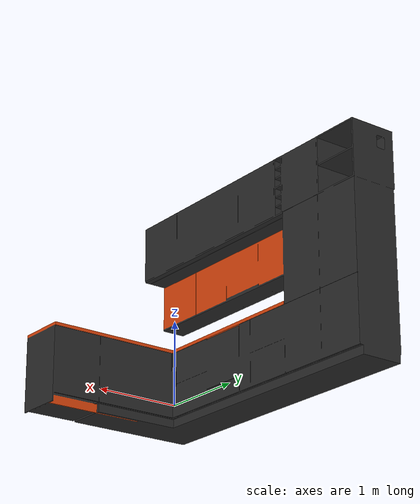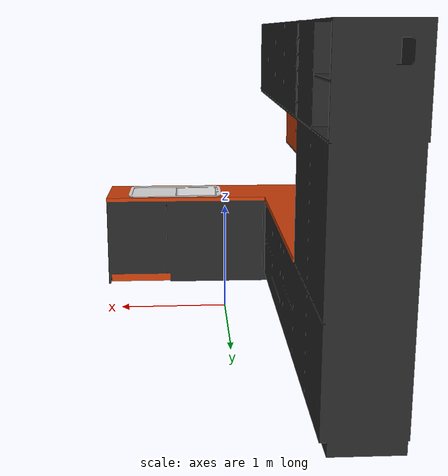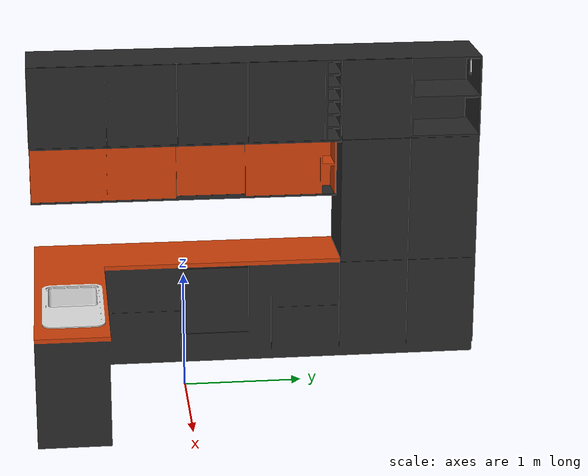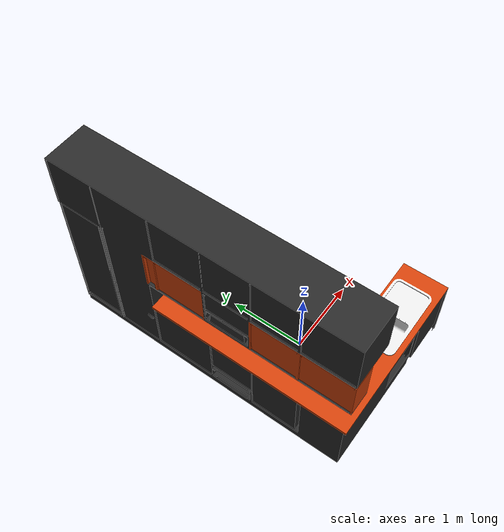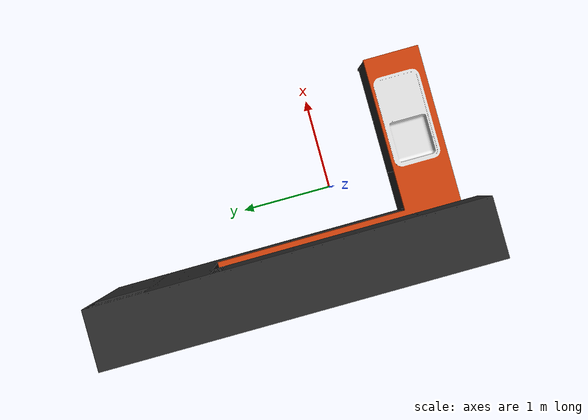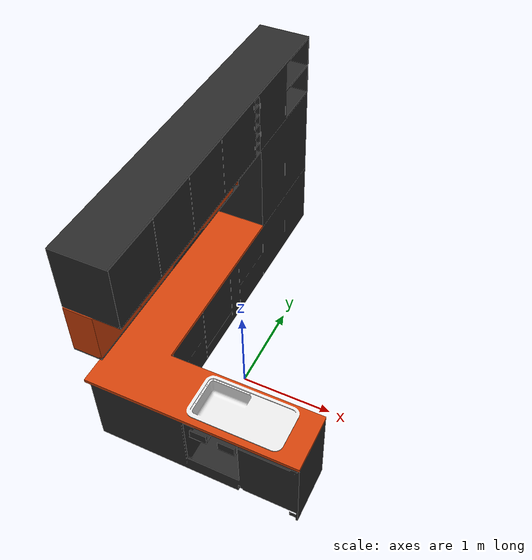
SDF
<?xml version='1.0' ?>
<sdf version='1.6'>
  <model name='kitchen'>
    <static>false</static>
    <link name='link'>
      <collision name='collision'>
        <geometry>
          <mesh>
            <uri>model://volta_simulation/models/kitchen/meshes/kitchen.dae</uri>
          </mesh>
        </geometry>
        <surface>
          <friction>
            <ode>
              <mu>100</mu>
              <mu2>50</mu2>
            </ode>
          </friction>
        </surface>
      </collision>
      <visual name='visual'>
        <geometry>
          <mesh>
            <uri>model://volta_simulation/models/kitchen/meshes/kitchen.dae</uri>
          </mesh>
        </geometry>
</visual>
      <inertial>
        <pose>-0.02087656 0.00080827 -0.14148698 0 0 0</pose>
        <mass>3</mass>
        <inertia>
          <ixx>0.13667489 </ixx>
          <iyy>0.11757832 </iyy>
          <izz>0.16535604</izz>
          <ixy>0</ixy>
          <ixz>0 </ixz>
          <iyz>0</iyz>
        </inertia>
      </inertial>
    </link>
  </model>
</sdf>
